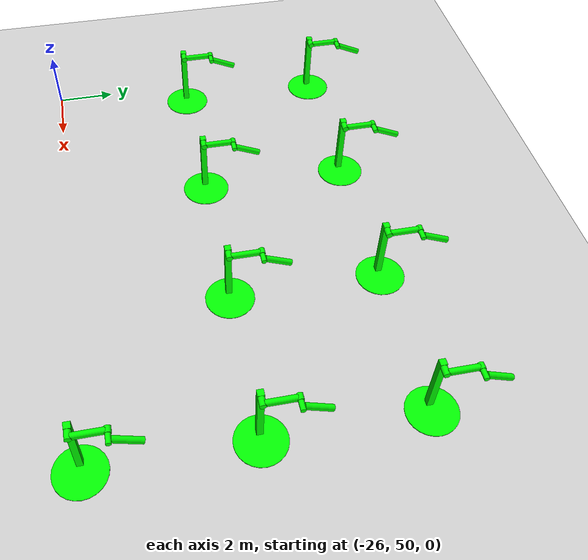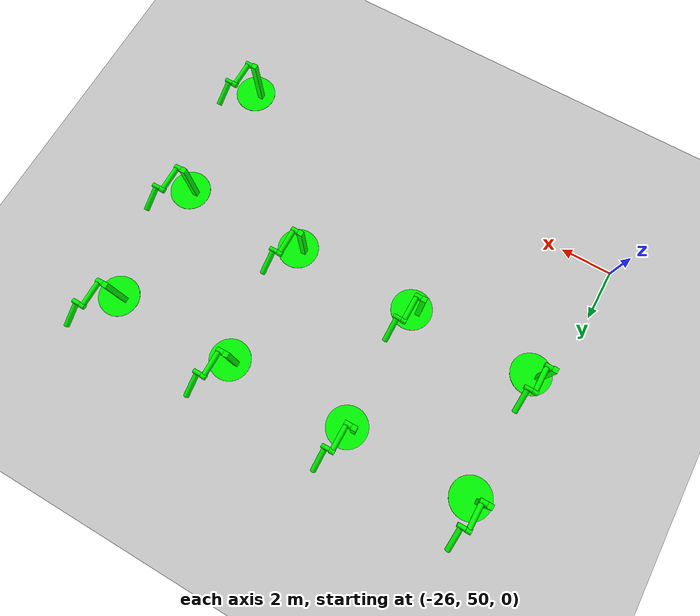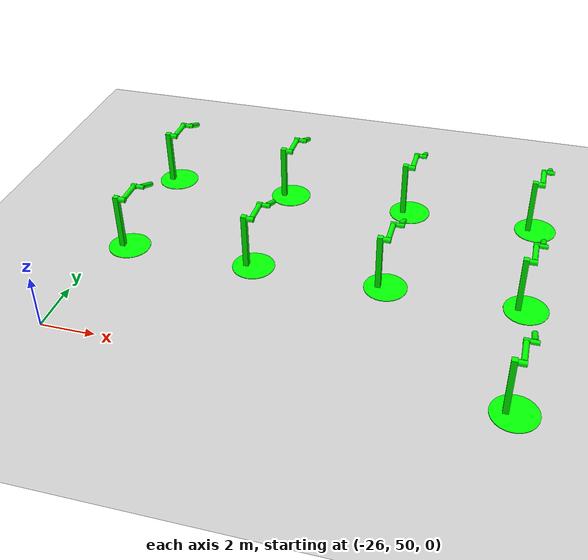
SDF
<sdf version="1.6">
 <world name="double_pendulums">
  <model name="ground_plane">
   <static>true</static>
   <link name="link">
    <collision name="collision">
     <geometry><plane><normal>0 0 1</normal><size>100 100</size></plane></geometry>
    </collision>
    <visual name="visual">
     <geometry><plane><normal>0 0 1</normal><size>100 100</size></plane></geometry>
     <material>
      <ambient>0.8 0.8 0.8 1</ambient>
      <diffuse>0.8 0.8 0.8 1</diffuse>
      <specular>0.8 0.8 0.8 1</specular>
     </material>
    </visual>
   </link>
  </model>
  <model name="dbl_pendulum_258">
   <pose>-10 50 0 0 0 0</pose>
   <link name="base">
    <inertial><mass>100</mass></inertial>
    <visual name="vis_plate_on_ground">
     <pose>0 0 0.01 0 0 0</pose>
     <geometry><cylinder><radius>0.8</radius><length>0.02</length></cylinder></geometry>
     <material><ambient>0 1 0 1</ambient><diffuse>0 1 0 1</diffuse><specular>0 1 0 1</specular></material>
    </visual>
    <visual name="vis_pole">
     <pose>-0.275 0 1.1 0 0 0</pose>
     <geometry><box><size>0.2 0.2 2.2</size></box></geometry>
     <material><ambient>0 1 0 1</ambient><diffuse>0 1 0 1</diffuse><specular>0 1 0 1</specular></material>
    </visual>
    <collision name="col_plate_on_ground">
     <pose>0 0 0.01 0 0 0</pose>
     <geometry><cylinder><radius>0.8</radius><length>0.02</length></cylinder></geometry>
    </collision>
    <collision name="col_pole">
     <pose>-0.275 0 1.1 0 0 0</pose>
     <geometry><box><size>0.2 0.2 2.2</size></box></geometry>
    </collision>
   </link>
   <link name="upper_link">
    <pose>0 0 2.1 -1.5708 0 0</pose>
    <inertial><pose>0 0 0.5 0 0 0</pose></inertial>
    <visual name="vis_upper_joint">
     <pose>-0.05 0 0 0 1.5708 0</pose>
     <geometry><cylinder><radius>0.1</radius><length>0.3</length></cylinder></geometry>
     <material><ambient>0 1 0 1</ambient><diffuse>0 1 0 1</diffuse><specular>0 1 0 1</specular></material>
    </visual>
    <visual name="vis_lower_joint">
     <pose>0 0 1.0 0 1.5708 0</pose>
     <geometry><cylinder><radius>0.1</radius><length>0.2</length></cylinder></geometry>
     <material><ambient>0 1 0 1</ambient><diffuse>0 1 0 1</diffuse><specular>0 1 0 1</specular></material>
    </visual>
    <visual name="vis_cylinder">
     <pose>0 0 0.5 0 0 0</pose>
     <geometry><cylinder><radius>0.1</radius><length>0.9</length></cylinder></geometry>
     <material><ambient>0 1 0 1</ambient><diffuse>0 1 0 1</diffuse><specular>0 1 0 1</specular></material>
    </visual>
    <collision name="col_upper_joint">
     <pose>-0.05 0 0 0 1.5708 0</pose>
     <geometry><cylinder><radius>0.1</radius><length>0.3</length></cylinder></geometry>
    </collision>
    <collision name="col_lower_joint">
     <pose>0 0 1.0 0 1.5708 0</pose>
     <geometry><cylinder><radius>0.1</radius><length>0.2</length></cylinder></geometry>
    </collision>
    <collision name="col_cylinder">
     <pose>0 0 0.5 0 0 0</pose>
     <geometry><cylinder><radius>0.1</radius><length>0.9</length></cylinder></geometry>
    </collision>
   </link>
   <link name="lower_link">
    <pose>0.25 1.0 2.1 -2 0 0</pose>
    <inertial><pose>0 0 0.5 0 0 0</pose></inertial>
    <visual name="vis_lower_joint">
     <pose>0 0 0 0 1.5708 0</pose>
     <geometry><cylinder><radius>0.08</radius><length>0.3</length></cylinder></geometry>
     <material><ambient>0 1 0 1</ambient><diffuse>0 1 0 1</diffuse><specular>0 1 0 1</specular></material>
    </visual>
    <visual name="vis_cylinder">
     <pose>0 0 0.5 0 0 0</pose>
     <geometry><cylinder><radius>0.1</radius><length>0.9</length></cylinder></geometry>
     <material><ambient>0 1 0 1</ambient><diffuse>0 1 0 1</diffuse><specular>0 1 0 1</specular></material>
    </visual>
    <collision name="col_lower_joint">
     <pose>0 0 0 0 1.5708 0</pose>
     <geometry><cylinder><radius>0.08</radius><length>0.3</length></cylinder></geometry>
    </collision>
    <collision name="col_cylinder">
     <pose>0 0 0.5 0 0 0</pose>
     <geometry><cylinder><radius>0.1</radius><length>0.9</length></cylinder></geometry>
    </collision>
   </link>
   <joint name="upper_joint" type="revolute">
    <parent>base</parent>
    <child>upper_link</child>
    <axis><xyz>1.0 0 0</xyz></axis>
   </joint>
   <joint name="lower_joint" type="revolute">
    <parent>upper_link</parent>
    <child>lower_link</child>
    <axis><xyz>1.0 0 0</xyz></axis>
   </joint>
  </model>
  <model name="dbl_pendulum_280">
   <pose>-25 55 0 0 0 0</pose>
   <link name="base">
    <inertial><mass>100</mass></inertial>
    <visual name="vis_plate_on_ground">
     <pose>0 0 0.01 0 0 0</pose>
     <geometry><cylinder><radius>0.8</radius><length>0.02</length></cylinder></geometry>
     <material><ambient>0 1 0 1</ambient><diffuse>0 1 0 1</diffuse><specular>0 1 0 1</specular></material>
    </visual>
    <visual name="vis_pole">
     <pose>-0.275 0 1.1 0 0 0</pose>
     <geometry><box><size>0.2 0.2 2.2</size></box></geometry>
     <material><ambient>0 1 0 1</ambient><diffuse>0 1 0 1</diffuse><specular>0 1 0 1</specular></material>
    </visual>
    <collision name="col_plate_on_ground">
     <pose>0 0 0.01 0 0 0</pose>
     <geometry><cylinder><radius>0.8</radius><length>0.02</length></cylinder></geometry>
    </collision>
    <collision name="col_pole">
     <pose>-0.275 0 1.1 0 0 0</pose>
     <geometry><box><size>0.2 0.2 2.2</size></box></geometry>
    </collision>
   </link>
   <link name="upper_link">
    <pose>0 0 2.1 -1.5708 0 0</pose>
    <inertial><pose>0 0 0.5 0 0 0</pose></inertial>
    <visual name="vis_upper_joint">
     <pose>-0.05 0 0 0 1.5708 0</pose>
     <geometry><cylinder><radius>0.1</radius><length>0.3</length></cylinder></geometry>
     <material><ambient>0 1 0 1</ambient><diffuse>0 1 0 1</diffuse><specular>0 1 0 1</specular></material>
    </visual>
    <visual name="vis_lower_joint">
     <pose>0 0 1.0 0 1.5708 0</pose>
     <geometry><cylinder><radius>0.1</radius><length>0.2</length></cylinder></geometry>
     <material><ambient>0 1 0 1</ambient><diffuse>0 1 0 1</diffuse><specular>0 1 0 1</specular></material>
    </visual>
    <visual name="vis_cylinder">
     <pose>0 0 0.5 0 0 0</pose>
     <geometry><cylinder><radius>0.1</radius><length>0.9</length></cylinder></geometry>
     <material><ambient>0 1 0 1</ambient><diffuse>0 1 0 1</diffuse><specular>0 1 0 1</specular></material>
    </visual>
    <collision name="col_upper_joint">
     <pose>-0.05 0 0 0 1.5708 0</pose>
     <geometry><cylinder><radius>0.1</radius><length>0.3</length></cylinder></geometry>
    </collision>
    <collision name="col_lower_joint">
     <pose>0 0 1.0 0 1.5708 0</pose>
     <geometry><cylinder><radius>0.1</radius><length>0.2</length></cylinder></geometry>
    </collision>
    <collision name="col_cylinder">
     <pose>0 0 0.5 0 0 0</pose>
     <geometry><cylinder><radius>0.1</radius><length>0.9</length></cylinder></geometry>
    </collision>
   </link>
   <link name="lower_link">
    <pose>0.25 1.0 2.1 -2 0 0</pose>
    <inertial><pose>0 0 0.5 0 0 0</pose></inertial>
    <visual name="vis_lower_joint">
     <pose>0 0 0 0 1.5708 0</pose>
     <geometry><cylinder><radius>0.08</radius><length>0.3</length></cylinder></geometry>
     <material><ambient>0 1 0 1</ambient><diffuse>0 1 0 1</diffuse><specular>0 1 0 1</specular></material>
    </visual>
    <visual name="vis_cylinder">
     <pose>0 0 0.5 0 0 0</pose>
     <geometry><cylinder><radius>0.1</radius><length>0.9</length></cylinder></geometry>
     <material><ambient>0 1 0 1</ambient><diffuse>0 1 0 1</diffuse><specular>0 1 0 1</specular></material>
    </visual>
    <collision name="col_lower_joint">
     <pose>0 0 0 0 1.5708 0</pose>
     <geometry><cylinder><radius>0.08</radius><length>0.3</length></cylinder></geometry>
    </collision>
    <collision name="col_cylinder">
     <pose>0 0 0.5 0 0 0</pose>
     <geometry><cylinder><radius>0.1</radius><length>0.9</length></cylinder></geometry>
    </collision>
   </link>
   <joint name="upper_joint" type="revolute">
    <parent>base</parent>
    <child>upper_link</child>
    <axis><xyz>1.0 0 0</xyz></axis>
   </joint>
   <joint name="lower_joint" type="revolute">
    <parent>upper_link</parent>
    <child>lower_link</child>
    <axis><xyz>1.0 0 0</xyz></axis>
   </joint>
  </model>
  <model name="dbl_pendulum_281">
   <pose>-20 55 0 0 0 0</pose>
   <link name="base">
    <inertial><mass>100</mass></inertial>
    <visual name="vis_plate_on_ground">
     <pose>0 0 0.01 0 0 0</pose>
     <geometry><cylinder><radius>0.8</radius><length>0.02</length></cylinder></geometry>
     <material><ambient>0 1 0 1</ambient><diffuse>0 1 0 1</diffuse><specular>0 1 0 1</specular></material>
    </visual>
    <visual name="vis_pole">
     <pose>-0.275 0 1.1 0 0 0</pose>
     <geometry><box><size>0.2 0.2 2.2</size></box></geometry>
     <material><ambient>0 1 0 1</ambient><diffuse>0 1 0 1</diffuse><specular>0 1 0 1</specular></material>
    </visual>
    <collision name="col_plate_on_ground">
     <pose>0 0 0.01 0 0 0</pose>
     <geometry><cylinder><radius>0.8</radius><length>0.02</length></cylinder></geometry>
    </collision>
    <collision name="col_pole">
     <pose>-0.275 0 1.1 0 0 0</pose>
     <geometry><box><size>0.2 0.2 2.2</size></box></geometry>
    </collision>
   </link>
   <link name="upper_link">
    <pose>0 0 2.1 -1.5708 0 0</pose>
    <inertial><pose>0 0 0.5 0 0 0</pose></inertial>
    <visual name="vis_upper_joint">
     <pose>-0.05 0 0 0 1.5708 0</pose>
     <geometry><cylinder><radius>0.1</radius><length>0.3</length></cylinder></geometry>
     <material><ambient>0 1 0 1</ambient><diffuse>0 1 0 1</diffuse><specular>0 1 0 1</specular></material>
    </visual>
    <visual name="vis_lower_joint">
     <pose>0 0 1.0 0 1.5708 0</pose>
     <geometry><cylinder><radius>0.1</radius><length>0.2</length></cylinder></geometry>
     <material><ambient>0 1 0 1</ambient><diffuse>0 1 0 1</diffuse><specular>0 1 0 1</specular></material>
    </visual>
    <visual name="vis_cylinder">
     <pose>0 0 0.5 0 0 0</pose>
     <geometry><cylinder><radius>0.1</radius><length>0.9</length></cylinder></geometry>
     <material><ambient>0 1 0 1</ambient><diffuse>0 1 0 1</diffuse><specular>0 1 0 1</specular></material>
    </visual>
    <collision name="col_upper_joint">
     <pose>-0.05 0 0 0 1.5708 0</pose>
     <geometry><cylinder><radius>0.1</radius><length>0.3</length></cylinder></geometry>
    </collision>
    <collision name="col_lower_joint">
     <pose>0 0 1.0 0 1.5708 0</pose>
     <geometry><cylinder><radius>0.1</radius><length>0.2</length></cylinder></geometry>
    </collision>
    <collision name="col_cylinder">
     <pose>0 0 0.5 0 0 0</pose>
     <geometry><cylinder><radius>0.1</radius><length>0.9</length></cylinder></geometry>
    </collision>
   </link>
   <link name="lower_link">
    <pose>0.25 1.0 2.1 -2 0 0</pose>
    <inertial><pose>0 0 0.5 0 0 0</pose></inertial>
    <visual name="vis_lower_joint">
     <pose>0 0 0 0 1.5708 0</pose>
     <geometry><cylinder><radius>0.08</radius><length>0.3</length></cylinder></geometry>
     <material><ambient>0 1 0 1</ambient><diffuse>0 1 0 1</diffuse><specular>0 1 0 1</specular></material>
    </visual>
    <visual name="vis_cylinder">
     <pose>0 0 0.5 0 0 0</pose>
     <geometry><cylinder><radius>0.1</radius><length>0.9</length></cylinder></geometry>
     <material><ambient>0 1 0 1</ambient><diffuse>0 1 0 1</diffuse><specular>0 1 0 1</specular></material>
    </visual>
    <collision name="col_lower_joint">
     <pose>0 0 0 0 1.5708 0</pose>
     <geometry><cylinder><radius>0.08</radius><length>0.3</length></cylinder></geometry>
    </collision>
    <collision name="col_cylinder">
     <pose>0 0 0.5 0 0 0</pose>
     <geometry><cylinder><radius>0.1</radius><length>0.9</length></cylinder></geometry>
    </collision>
   </link>
   <joint name="upper_joint" type="revolute">
    <parent>base</parent>
    <child>upper_link</child>
    <axis><xyz>1.0 0 0</xyz></axis>
   </joint>
   <joint name="lower_joint" type="revolute">
    <parent>upper_link</parent>
    <child>lower_link</child>
    <axis><xyz>1.0 0 0</xyz></axis>
   </joint>
  </model>
  <model name="dbl_pendulum_282">
   <pose>-15 55 0 0 0 0</pose>
   <link name="base">
    <inertial><mass>100</mass></inertial>
    <visual name="vis_plate_on_ground">
     <pose>0 0 0.01 0 0 0</pose>
     <geometry><cylinder><radius>0.8</radius><length>0.02</length></cylinder></geometry>
     <material><ambient>0 1 0 1</ambient><diffuse>0 1 0 1</diffuse><specular>0 1 0 1</specular></material>
    </visual>
    <visual name="vis_pole">
     <pose>-0.275 0 1.1 0 0 0</pose>
     <geometry><box><size>0.2 0.2 2.2</size></box></geometry>
     <material><ambient>0 1 0 1</ambient><diffuse>0 1 0 1</diffuse><specular>0 1 0 1</specular></material>
    </visual>
    <collision name="col_plate_on_ground">
     <pose>0 0 0.01 0 0 0</pose>
     <geometry><cylinder><radius>0.8</radius><length>0.02</length></cylinder></geometry>
    </collision>
    <collision name="col_pole">
     <pose>-0.275 0 1.1 0 0 0</pose>
     <geometry><box><size>0.2 0.2 2.2</size></box></geometry>
    </collision>
   </link>
   <link name="upper_link">
    <pose>0 0 2.1 -1.5708 0 0</pose>
    <inertial><pose>0 0 0.5 0 0 0</pose></inertial>
    <visual name="vis_upper_joint">
     <pose>-0.05 0 0 0 1.5708 0</pose>
     <geometry><cylinder><radius>0.1</radius><length>0.3</length></cylinder></geometry>
     <material><ambient>0 1 0 1</ambient><diffuse>0 1 0 1</diffuse><specular>0 1 0 1</specular></material>
    </visual>
    <visual name="vis_lower_joint">
     <pose>0 0 1.0 0 1.5708 0</pose>
     <geometry><cylinder><radius>0.1</radius><length>0.2</length></cylinder></geometry>
     <material><ambient>0 1 0 1</ambient><diffuse>0 1 0 1</diffuse><specular>0 1 0 1</specular></material>
    </visual>
    <visual name="vis_cylinder">
     <pose>0 0 0.5 0 0 0</pose>
     <geometry><cylinder><radius>0.1</radius><length>0.9</length></cylinder></geometry>
     <material><ambient>0 1 0 1</ambient><diffuse>0 1 0 1</diffuse><specular>0 1 0 1</specular></material>
    </visual>
    <collision name="col_upper_joint">
     <pose>-0.05 0 0 0 1.5708 0</pose>
     <geometry><cylinder><radius>0.1</radius><length>0.3</length></cylinder></geometry>
    </collision>
    <collision name="col_lower_joint">
     <pose>0 0 1.0 0 1.5708 0</pose>
     <geometry><cylinder><radius>0.1</radius><length>0.2</length></cylinder></geometry>
    </collision>
    <collision name="col_cylinder">
     <pose>0 0 0.5 0 0 0</pose>
     <geometry><cylinder><radius>0.1</radius><length>0.9</length></cylinder></geometry>
    </collision>
   </link>
   <link name="lower_link">
    <pose>0.25 1.0 2.1 -2 0 0</pose>
    <inertial><pose>0 0 0.5 0 0 0</pose></inertial>
    <visual name="vis_lower_joint">
     <pose>0 0 0 0 1.5708 0</pose>
     <geometry><cylinder><radius>0.08</radius><length>0.3</length></cylinder></geometry>
     <material><ambient>0 1 0 1</ambient><diffuse>0 1 0 1</diffuse><specular>0 1 0 1</specular></material>
    </visual>
    <visual name="vis_cylinder">
     <pose>0 0 0.5 0 0 0</pose>
     <geometry><cylinder><radius>0.1</radius><length>0.9</length></cylinder></geometry>
     <material><ambient>0 1 0 1</ambient><diffuse>0 1 0 1</diffuse><specular>0 1 0 1</specular></material>
    </visual>
    <collision name="col_lower_joint">
     <pose>0 0 0 0 1.5708 0</pose>
     <geometry><cylinder><radius>0.08</radius><length>0.3</length></cylinder></geometry>
    </collision>
    <collision name="col_cylinder">
     <pose>0 0 0.5 0 0 0</pose>
     <geometry><cylinder><radius>0.1</radius><length>0.9</length></cylinder></geometry>
    </collision>
   </link>
   <joint name="upper_joint" type="revolute">
    <parent>base</parent>
    <child>upper_link</child>
    <axis><xyz>1.0 0 0</xyz></axis>
   </joint>
   <joint name="lower_joint" type="revolute">
    <parent>upper_link</parent>
    <child>lower_link</child>
    <axis><xyz>1.0 0 0</xyz></axis>
   </joint>
  </model>
  <model name="dbl_pendulum_283">
   <pose>-10 55 0 0 0 0</pose>
   <link name="base">
    <inertial><mass>100</mass></inertial>
    <visual name="vis_plate_on_ground">
     <pose>0 0 0.01 0 0 0</pose>
     <geometry><cylinder><radius>0.8</radius><length>0.02</length></cylinder></geometry>
     <material><ambient>0 1 0 1</ambient><diffuse>0 1 0 1</diffuse><specular>0 1 0 1</specular></material>
    </visual>
    <visual name="vis_pole">
     <pose>-0.275 0 1.1 0 0 0</pose>
     <geometry><box><size>0.2 0.2 2.2</size></box></geometry>
     <material><ambient>0 1 0 1</ambient><diffuse>0 1 0 1</diffuse><specular>0 1 0 1</specular></material>
    </visual>
    <collision name="col_plate_on_ground">
     <pose>0 0 0.01 0 0 0</pose>
     <geometry><cylinder><radius>0.8</radius><length>0.02</length></cylinder></geometry>
    </collision>
    <collision name="col_pole">
     <pose>-0.275 0 1.1 0 0 0</pose>
     <geometry><box><size>0.2 0.2 2.2</size></box></geometry>
    </collision>
   </link>
   <link name="upper_link">
    <pose>0 0 2.1 -1.5708 0 0</pose>
    <inertial><pose>0 0 0.5 0 0 0</pose></inertial>
    <visual name="vis_upper_joint">
     <pose>-0.05 0 0 0 1.5708 0</pose>
     <geometry><cylinder><radius>0.1</radius><length>0.3</length></cylinder></geometry>
     <material><ambient>0 1 0 1</ambient><diffuse>0 1 0 1</diffuse><specular>0 1 0 1</specular></material>
    </visual>
    <visual name="vis_lower_joint">
     <pose>0 0 1.0 0 1.5708 0</pose>
     <geometry><cylinder><radius>0.1</radius><length>0.2</length></cylinder></geometry>
     <material><ambient>0 1 0 1</ambient><diffuse>0 1 0 1</diffuse><specular>0 1 0 1</specular></material>
    </visual>
    <visual name="vis_cylinder">
     <pose>0 0 0.5 0 0 0</pose>
     <geometry><cylinder><radius>0.1</radius><length>0.9</length></cylinder></geometry>
     <material><ambient>0 1 0 1</ambient><diffuse>0 1 0 1</diffuse><specular>0 1 0 1</specular></material>
    </visual>
    <collision name="col_upper_joint">
     <pose>-0.05 0 0 0 1.5708 0</pose>
     <geometry><cylinder><radius>0.1</radius><length>0.3</length></cylinder></geometry>
    </collision>
    <collision name="col_lower_joint">
     <pose>0 0 1.0 0 1.5708 0</pose>
     <geometry><cylinder><radius>0.1</radius><length>0.2</length></cylinder></geometry>
    </collision>
    <collision name="col_cylinder">
     <pose>0 0 0.5 0 0 0</pose>
     <geometry><cylinder><radius>0.1</radius><length>0.9</length></cylinder></geometry>
    </collision>
   </link>
   <link name="lower_link">
    <pose>0.25 1.0 2.1 -2 0 0</pose>
    <inertial><pose>0 0 0.5 0 0 0</pose></inertial>
    <visual name="vis_lower_joint">
     <pose>0 0 0 0 1.5708 0</pose>
     <geometry><cylinder><radius>0.08</radius><length>0.3</length></cylinder></geometry>
     <material><ambient>0 1 0 1</ambient><diffuse>0 1 0 1</diffuse><specular>0 1 0 1</specular></material>
    </visual>
    <visual name="vis_cylinder">
     <pose>0 0 0.5 0 0 0</pose>
     <geometry><cylinder><radius>0.1</radius><length>0.9</length></cylinder></geometry>
     <material><ambient>0 1 0 1</ambient><diffuse>0 1 0 1</diffuse><specular>0 1 0 1</specular></material>
    </visual>
    <collision name="col_lower_joint">
     <pose>0 0 0 0 1.5708 0</pose>
     <geometry><cylinder><radius>0.08</radius><length>0.3</length></cylinder></geometry>
    </collision>
    <collision name="col_cylinder">
     <pose>0 0 0.5 0 0 0</pose>
     <geometry><cylinder><radius>0.1</radius><length>0.9</length></cylinder></geometry>
    </collision>
   </link>
   <joint name="upper_joint" type="revolute">
    <parent>base</parent>
    <child>upper_link</child>
    <axis><xyz>1.0 0 0</xyz></axis>
   </joint>
   <joint name="lower_joint" type="revolute">
    <parent>upper_link</parent>
    <child>lower_link</child>
    <axis><xyz>1.0 0 0</xyz></axis>
   </joint>
  </model>
  <model name="dbl_pendulum_305">
   <pose>-25 60 0 0 0 0</pose>
   <link name="base">
    <inertial><mass>100</mass></inertial>
    <visual name="vis_plate_on_ground">
     <pose>0 0 0.01 0 0 0</pose>
     <geometry><cylinder><radius>0.8</radius><length>0.02</length></cylinder></geometry>
     <material><ambient>0 1 0 1</ambient><diffuse>0 1 0 1</diffuse><specular>0 1 0 1</specular></material>
    </visual>
    <visual name="vis_pole">
     <pose>-0.275 0 1.1 0 0 0</pose>
     <geometry><box><size>0.2 0.2 2.2</size></box></geometry>
     <material><ambient>0 1 0 1</ambient><diffuse>0 1 0 1</diffuse><specular>0 1 0 1</specular></material>
    </visual>
    <collision name="col_plate_on_ground">
     <pose>0 0 0.01 0 0 0</pose>
     <geometry><cylinder><radius>0.8</radius><length>0.02</length></cylinder></geometry>
    </collision>
    <collision name="col_pole">
     <pose>-0.275 0 1.1 0 0 0</pose>
     <geometry><box><size>0.2 0.2 2.2</size></box></geometry>
    </collision>
   </link>
   <link name="upper_link">
    <pose>0 0 2.1 -1.5708 0 0</pose>
    <inertial><pose>0 0 0.5 0 0 0</pose></inertial>
    <visual name="vis_upper_joint">
     <pose>-0.05 0 0 0 1.5708 0</pose>
     <geometry><cylinder><radius>0.1</radius><length>0.3</length></cylinder></geometry>
     <material><ambient>0 1 0 1</ambient><diffuse>0 1 0 1</diffuse><specular>0 1 0 1</specular></material>
    </visual>
    <visual name="vis_lower_joint">
     <pose>0 0 1.0 0 1.5708 0</pose>
     <geometry><cylinder><radius>0.1</radius><length>0.2</length></cylinder></geometry>
     <material><ambient>0 1 0 1</ambient><diffuse>0 1 0 1</diffuse><specular>0 1 0 1</specular></material>
    </visual>
    <visual name="vis_cylinder">
     <pose>0 0 0.5 0 0 0</pose>
     <geometry><cylinder><radius>0.1</radius><length>0.9</length></cylinder></geometry>
     <material><ambient>0 1 0 1</ambient><diffuse>0 1 0 1</diffuse><specular>0 1 0 1</specular></material>
    </visual>
    <collision name="col_upper_joint">
     <pose>-0.05 0 0 0 1.5708 0</pose>
     <geometry><cylinder><radius>0.1</radius><length>0.3</length></cylinder></geometry>
    </collision>
    <collision name="col_lower_joint">
     <pose>0 0 1.0 0 1.5708 0</pose>
     <geometry><cylinder><radius>0.1</radius><length>0.2</length></cylinder></geometry>
    </collision>
    <collision name="col_cylinder">
     <pose>0 0 0.5 0 0 0</pose>
     <geometry><cylinder><radius>0.1</radius><length>0.9</length></cylinder></geometry>
    </collision>
   </link>
   <link name="lower_link">
    <pose>0.25 1.0 2.1 -2 0 0</pose>
    <inertial><pose>0 0 0.5 0 0 0</pose></inertial>
    <visual name="vis_lower_joint">
     <pose>0 0 0 0 1.5708 0</pose>
     <geometry><cylinder><radius>0.08</radius><length>0.3</length></cylinder></geometry>
     <material><ambient>0 1 0 1</ambient><diffuse>0 1 0 1</diffuse><specular>0 1 0 1</specular></material>
    </visual>
    <visual name="vis_cylinder">
     <pose>0 0 0.5 0 0 0</pose>
     <geometry><cylinder><radius>0.1</radius><length>0.9</length></cylinder></geometry>
     <material><ambient>0 1 0 1</ambient><diffuse>0 1 0 1</diffuse><specular>0 1 0 1</specular></material>
    </visual>
    <collision name="col_lower_joint">
     <pose>0 0 0 0 1.5708 0</pose>
     <geometry><cylinder><radius>0.08</radius><length>0.3</length></cylinder></geometry>
    </collision>
    <collision name="col_cylinder">
     <pose>0 0 0.5 0 0 0</pose>
     <geometry><cylinder><radius>0.1</radius><length>0.9</length></cylinder></geometry>
    </collision>
   </link>
   <joint name="upper_joint" type="revolute">
    <parent>base</parent>
    <child>upper_link</child>
    <axis><xyz>1.0 0 0</xyz></axis>
   </joint>
   <joint name="lower_joint" type="revolute">
    <parent>upper_link</parent>
    <child>lower_link</child>
    <axis><xyz>1.0 0 0</xyz></axis>
   </joint>
  </model>
  <model name="dbl_pendulum_306">
   <pose>-20 60 0 0 0 0</pose>
   <link name="base">
    <inertial><mass>100</mass></inertial>
    <visual name="vis_plate_on_ground">
     <pose>0 0 0.01 0 0 0</pose>
     <geometry><cylinder><radius>0.8</radius><length>0.02</length></cylinder></geometry>
     <material><ambient>0 1 0 1</ambient><diffuse>0 1 0 1</diffuse><specular>0 1 0 1</specular></material>
    </visual>
    <visual name="vis_pole">
     <pose>-0.275 0 1.1 0 0 0</pose>
     <geometry><box><size>0.2 0.2 2.2</size></box></geometry>
     <material><ambient>0 1 0 1</ambient><diffuse>0 1 0 1</diffuse><specular>0 1 0 1</specular></material>
    </visual>
    <collision name="col_plate_on_ground">
     <pose>0 0 0.01 0 0 0</pose>
     <geometry><cylinder><radius>0.8</radius><length>0.02</length></cylinder></geometry>
    </collision>
    <collision name="col_pole">
     <pose>-0.275 0 1.1 0 0 0</pose>
     <geometry><box><size>0.2 0.2 2.2</size></box></geometry>
    </collision>
   </link>
   <link name="upper_link">
    <pose>0 0 2.1 -1.5708 0 0</pose>
    <inertial><pose>0 0 0.5 0 0 0</pose></inertial>
    <visual name="vis_upper_joint">
     <pose>-0.05 0 0 0 1.5708 0</pose>
     <geometry><cylinder><radius>0.1</radius><length>0.3</length></cylinder></geometry>
     <material><ambient>0 1 0 1</ambient><diffuse>0 1 0 1</diffuse><specular>0 1 0 1</specular></material>
    </visual>
    <visual name="vis_lower_joint">
     <pose>0 0 1.0 0 1.5708 0</pose>
     <geometry><cylinder><radius>0.1</radius><length>0.2</length></cylinder></geometry>
     <material><ambient>0 1 0 1</ambient><diffuse>0 1 0 1</diffuse><specular>0 1 0 1</specular></material>
    </visual>
    <visual name="vis_cylinder">
     <pose>0 0 0.5 0 0 0</pose>
     <geometry><cylinder><radius>0.1</radius><length>0.9</length></cylinder></geometry>
     <material><ambient>0 1 0 1</ambient><diffuse>0 1 0 1</diffuse><specular>0 1 0 1</specular></material>
    </visual>
    <collision name="col_upper_joint">
     <pose>-0.05 0 0 0 1.5708 0</pose>
     <geometry><cylinder><radius>0.1</radius><length>0.3</length></cylinder></geometry>
    </collision>
    <collision name="col_lower_joint">
     <pose>0 0 1.0 0 1.5708 0</pose>
     <geometry><cylinder><radius>0.1</radius><length>0.2</length></cylinder></geometry>
    </collision>
    <collision name="col_cylinder">
     <pose>0 0 0.5 0 0 0</pose>
     <geometry><cylinder><radius>0.1</radius><length>0.9</length></cylinder></geometry>
    </collision>
   </link>
   <link name="lower_link">
    <pose>0.25 1.0 2.1 -2 0 0</pose>
    <inertial><pose>0 0 0.5 0 0 0</pose></inertial>
    <visual name="vis_lower_joint">
     <pose>0 0 0 0 1.5708 0</pose>
     <geometry><cylinder><radius>0.08</radius><length>0.3</length></cylinder></geometry>
     <material><ambient>0 1 0 1</ambient><diffuse>0 1 0 1</diffuse><specular>0 1 0 1</specular></material>
    </visual>
    <visual name="vis_cylinder">
     <pose>0 0 0.5 0 0 0</pose>
     <geometry><cylinder><radius>0.1</radius><length>0.9</length></cylinder></geometry>
     <material><ambient>0 1 0 1</ambient><diffuse>0 1 0 1</diffuse><specular>0 1 0 1</specular></material>
    </visual>
    <collision name="col_lower_joint">
     <pose>0 0 0 0 1.5708 0</pose>
     <geometry><cylinder><radius>0.08</radius><length>0.3</length></cylinder></geometry>
    </collision>
    <collision name="col_cylinder">
     <pose>0 0 0.5 0 0 0</pose>
     <geometry><cylinder><radius>0.1</radius><length>0.9</length></cylinder></geometry>
    </collision>
   </link>
   <joint name="upper_joint" type="revolute">
    <parent>base</parent>
    <child>upper_link</child>
    <axis><xyz>1.0 0 0</xyz></axis>
   </joint>
   <joint name="lower_joint" type="revolute">
    <parent>upper_link</parent>
    <child>lower_link</child>
    <axis><xyz>1.0 0 0</xyz></axis>
   </joint>
  </model>
  <model name="dbl_pendulum_307">
   <pose>-15 60 0 0 0 0</pose>
   <link name="base">
    <inertial><mass>100</mass></inertial>
    <visual name="vis_plate_on_ground">
     <pose>0 0 0.01 0 0 0</pose>
     <geometry><cylinder><radius>0.8</radius><length>0.02</length></cylinder></geometry>
     <material><ambient>0 1 0 1</ambient><diffuse>0 1 0 1</diffuse><specular>0 1 0 1</specular></material>
    </visual>
    <visual name="vis_pole">
     <pose>-0.275 0 1.1 0 0 0</pose>
     <geometry><box><size>0.2 0.2 2.2</size></box></geometry>
     <material><ambient>0 1 0 1</ambient><diffuse>0 1 0 1</diffuse><specular>0 1 0 1</specular></material>
    </visual>
    <collision name="col_plate_on_ground">
     <pose>0 0 0.01 0 0 0</pose>
     <geometry><cylinder><radius>0.8</radius><length>0.02</length></cylinder></geometry>
    </collision>
    <collision name="col_pole">
     <pose>-0.275 0 1.1 0 0 0</pose>
     <geometry><box><size>0.2 0.2 2.2</size></box></geometry>
    </collision>
   </link>
   <link name="upper_link">
    <pose>0 0 2.1 -1.5708 0 0</pose>
    <inertial><pose>0 0 0.5 0 0 0</pose></inertial>
    <visual name="vis_upper_joint">
     <pose>-0.05 0 0 0 1.5708 0</pose>
     <geometry><cylinder><radius>0.1</radius><length>0.3</length></cylinder></geometry>
     <material><ambient>0 1 0 1</ambient><diffuse>0 1 0 1</diffuse><specular>0 1 0 1</specular></material>
    </visual>
    <visual name="vis_lower_joint">
     <pose>0 0 1.0 0 1.5708 0</pose>
     <geometry><cylinder><radius>0.1</radius><length>0.2</length></cylinder></geometry>
     <material><ambient>0 1 0 1</ambient><diffuse>0 1 0 1</diffuse><specular>0 1 0 1</specular></material>
    </visual>
    <visual name="vis_cylinder">
     <pose>0 0 0.5 0 0 0</pose>
     <geometry><cylinder><radius>0.1</radius><length>0.9</length></cylinder></geometry>
     <material><ambient>0 1 0 1</ambient><diffuse>0 1 0 1</diffuse><specular>0 1 0 1</specular></material>
    </visual>
    <collision name="col_upper_joint">
     <pose>-0.05 0 0 0 1.5708 0</pose>
     <geometry><cylinder><radius>0.1</radius><length>0.3</length></cylinder></geometry>
    </collision>
    <collision name="col_lower_joint">
     <pose>0 0 1.0 0 1.5708 0</pose>
     <geometry><cylinder><radius>0.1</radius><length>0.2</length></cylinder></geometry>
    </collision>
    <collision name="col_cylinder">
     <pose>0 0 0.5 0 0 0</pose>
     <geometry><cylinder><radius>0.1</radius><length>0.9</length></cylinder></geometry>
    </collision>
   </link>
   <link name="lower_link">
    <pose>0.25 1.0 2.1 -2 0 0</pose>
    <inertial><pose>0 0 0.5 0 0 0</pose></inertial>
    <visual name="vis_lower_joint">
     <pose>0 0 0 0 1.5708 0</pose>
     <geometry><cylinder><radius>0.08</radius><length>0.3</length></cylinder></geometry>
     <material><ambient>0 1 0 1</ambient><diffuse>0 1 0 1</diffuse><specular>0 1 0 1</specular></material>
    </visual>
    <visual name="vis_cylinder">
     <pose>0 0 0.5 0 0 0</pose>
     <geometry><cylinder><radius>0.1</radius><length>0.9</length></cylinder></geometry>
     <material><ambient>0 1 0 1</ambient><diffuse>0 1 0 1</diffuse><specular>0 1 0 1</specular></material>
    </visual>
    <collision name="col_lower_joint">
     <pose>0 0 0 0 1.5708 0</pose>
     <geometry><cylinder><radius>0.08</radius><length>0.3</length></cylinder></geometry>
    </collision>
    <collision name="col_cylinder">
     <pose>0 0 0.5 0 0 0</pose>
     <geometry><cylinder><radius>0.1</radius><length>0.9</length></cylinder></geometry>
    </collision>
   </link>
   <joint name="upper_joint" type="revolute">
    <parent>base</parent>
    <child>upper_link</child>
    <axis><xyz>1.0 0 0</xyz></axis>
   </joint>
   <joint name="lower_joint" type="revolute">
    <parent>upper_link</parent>
    <child>lower_link</child>
    <axis><xyz>1.0 0 0</xyz></axis>
   </joint>
  </model>
  <model name="dbl_pendulum_308">
   <pose>-10 60 0 0 0 0</pose>
   <link name="base">
    <inertial><mass>100</mass></inertial>
    <visual name="vis_plate_on_ground">
     <pose>0 0 0.01 0 0 0</pose>
     <geometry><cylinder><radius>0.8</radius><length>0.02</length></cylinder></geometry>
     <material><ambient>0 1 0 1</ambient><diffuse>0 1 0 1</diffuse><specular>0 1 0 1</specular></material>
    </visual>
    <visual name="vis_pole">
     <pose>-0.275 0 1.1 0 0 0</pose>
     <geometry><box><size>0.2 0.2 2.2</size></box></geometry>
     <material><ambient>0 1 0 1</ambient><diffuse>0 1 0 1</diffuse><specular>0 1 0 1</specular></material>
    </visual>
    <collision name="col_plate_on_ground">
     <pose>0 0 0.01 0 0 0</pose>
     <geometry><cylinder><radius>0.8</radius><length>0.02</length></cylinder></geometry>
    </collision>
    <collision name="col_pole">
     <pose>-0.275 0 1.1 0 0 0</pose>
     <geometry><box><size>0.2 0.2 2.2</size></box></geometry>
    </collision>
   </link>
   <link name="upper_link">
    <pose>0 0 2.1 -1.5708 0 0</pose>
    <inertial><pose>0 0 0.5 0 0 0</pose></inertial>
    <visual name="vis_upper_joint">
     <pose>-0.05 0 0 0 1.5708 0</pose>
     <geometry><cylinder><radius>0.1</radius><length>0.3</length></cylinder></geometry>
     <material><ambient>0 1 0 1</ambient><diffuse>0 1 0 1</diffuse><specular>0 1 0 1</specular></material>
    </visual>
    <visual name="vis_lower_joint">
     <pose>0 0 1.0 0 1.5708 0</pose>
     <geometry><cylinder><radius>0.1</radius><length>0.2</length></cylinder></geometry>
     <material><ambient>0 1 0 1</ambient><diffuse>0 1 0 1</diffuse><specular>0 1 0 1</specular></material>
    </visual>
    <visual name="vis_cylinder">
     <pose>0 0 0.5 0 0 0</pose>
     <geometry><cylinder><radius>0.1</radius><length>0.9</length></cylinder></geometry>
     <material><ambient>0 1 0 1</ambient><diffuse>0 1 0 1</diffuse><specular>0 1 0 1</specular></material>
    </visual>
    <collision name="col_upper_joint">
     <pose>-0.05 0 0 0 1.5708 0</pose>
     <geometry><cylinder><radius>0.1</radius><length>0.3</length></cylinder></geometry>
    </collision>
    <collision name="col_lower_joint">
     <pose>0 0 1.0 0 1.5708 0</pose>
     <geometry><cylinder><radius>0.1</radius><length>0.2</length></cylinder></geometry>
    </collision>
    <collision name="col_cylinder">
     <pose>0 0 0.5 0 0 0</pose>
     <geometry><cylinder><radius>0.1</radius><length>0.9</length></cylinder></geometry>
    </collision>
   </link>
   <link name="lower_link">
    <pose>0.25 1.0 2.1 -2 0 0</pose>
    <inertial><pose>0 0 0.5 0 0 0</pose></inertial>
    <visual name="vis_lower_joint">
     <pose>0 0 0 0 1.5708 0</pose>
     <geometry><cylinder><radius>0.08</radius><length>0.3</length></cylinder></geometry>
     <material><ambient>0 1 0 1</ambient><diffuse>0 1 0 1</diffuse><specular>0 1 0 1</specular></material>
    </visual>
    <visual name="vis_cylinder">
     <pose>0 0 0.5 0 0 0</pose>
     <geometry><cylinder><radius>0.1</radius><length>0.9</length></cylinder></geometry>
     <material><ambient>0 1 0 1</ambient><diffuse>0 1 0 1</diffuse><specular>0 1 0 1</specular></material>
    </visual>
    <collision name="col_lower_joint">
     <pose>0 0 0 0 1.5708 0</pose>
     <geometry><cylinder><radius>0.08</radius><length>0.3</length></cylinder></geometry>
    </collision>
    <collision name="col_cylinder">
     <pose>0 0 0.5 0 0 0</pose>
     <geometry><cylinder><radius>0.1</radius><length>0.9</length></cylinder></geometry>
    </collision>
   </link>
   <joint name="upper_joint" type="revolute">
    <parent>base</parent>
    <child>upper_link</child>
    <axis><xyz>1.0 0 0</xyz></axis>
   </joint>
   <joint name="lower_joint" type="revolute">
    <parent>upper_link</parent>
    <child>lower_link</child>
    <axis><xyz>1.0 0 0</xyz></axis>
   </joint>
  </model>
 </world>
</sdf>
